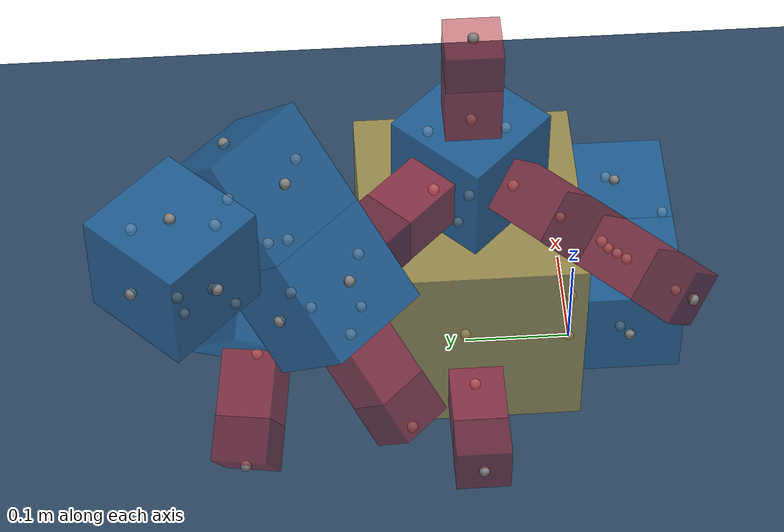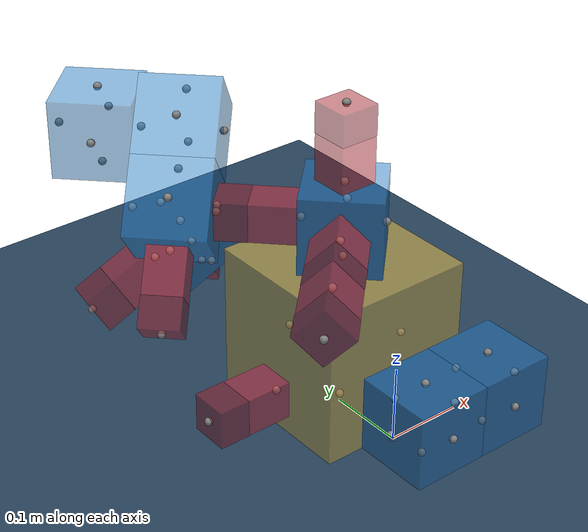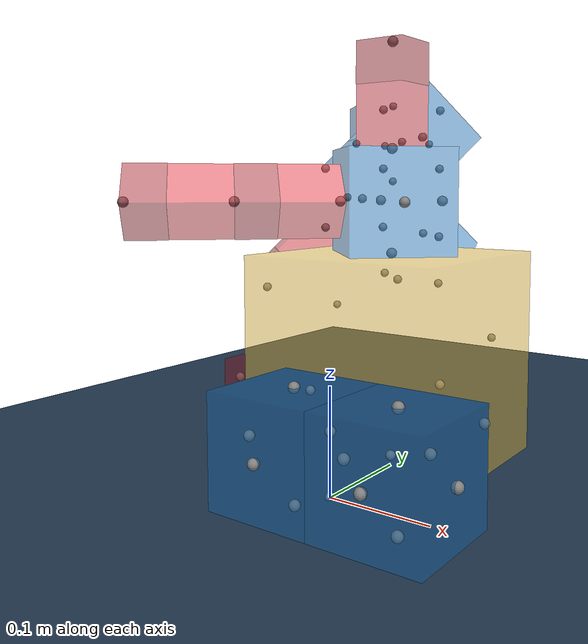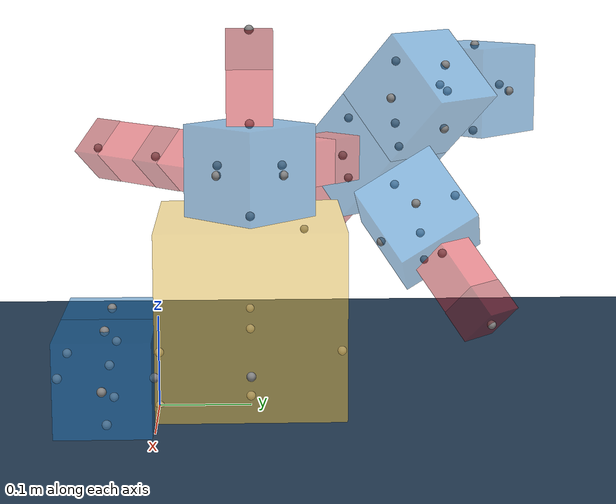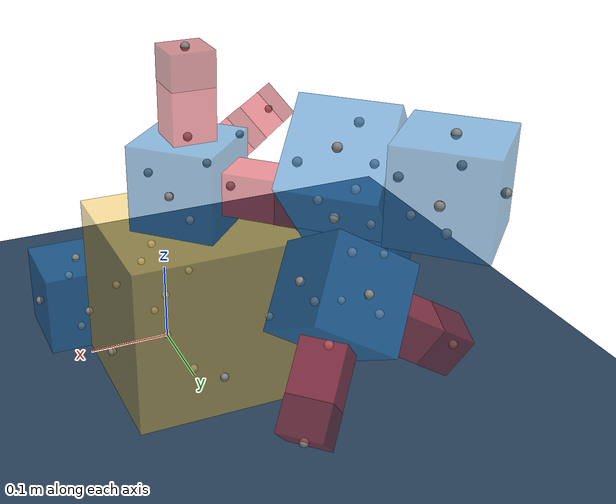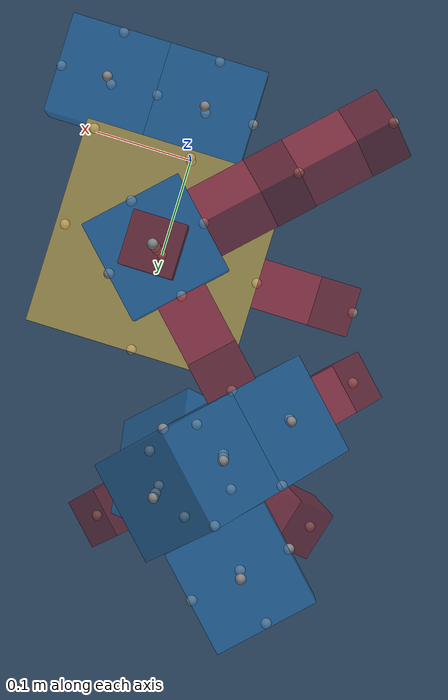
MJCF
<mujoco model="Simple Flat World">
  <compiler angle="radian"/>

  <option integrator="implicitfast"/>

  <visual>
    <global offwidth="1280" offheight="960"/>
  </visual>

  <default>
    <default class="robot1-main">
      <default class="robot1-0-25-3-main"/>
      <default class="robot1-0-27-4-main"/>
      <default class="robot1-0-13-1-main"/>
      <default class="robot1-27-6-2-main"/>
      <default class="robot1-27-22-0-main"/>
      <default class="robot1-27-8-4-main"/>
      <default class="robot1-13-26-5-main"/>
      <default class="robot1-6-1-0-main"/>
      <default class="robot1-8-19-0-main"/>
      <default class="robot1-19-18-3-main"/>
      <default class="robot1-19-12-4-main"/>
      <default class="robot1-19-17-2-main"/>
      <default class="robot1-18-2-5-main"/>
      <default class="robot1-12-21-0-main"/>
      <default class="robot1-12-24-3-main"/>
    </default>
  </default>

  <asset>
    <texture type="2d" colorspace="auto" name="floor" builtin="checker" rgb1="0.1 0.2 0.3" rgb2="0.2 0.3 0.4" width="600" height="600"/>
    <material name="floor" texture="floor" texuniform="true" texrepeat="3 3"/>
  </asset>

  <worldbody>
    <site pos="0 0 0"/>
    <camera name="ortho-cam" pos="-5 0 5" quat="0.653281 0.270598 -0.270598 -0.653281" orthographic="true" fovy="5"/>
    <light name="light" pos="0 0 1" dir="0 0 -1" type="directional" castshadow="false"/>
    <body name="floor">
      <geom name="floor" size="5 5 0.5" type="plane" material="floor"/>
    </body>
    <body name="robot1-world" pos="0 0 0.11">
      <joint type="free"/>
      <body name="robot1-core">
        <geom name="robot1-core" size="0.1 0.1 0.1" pos="0 0.1 0" type="box" mass="1" rgba="0.992157 0.792157 0.25098 0.5"/>
        <site name="robot1-core-front" pos="0 0.2 -0.05"/>
        <site name="robot1-core-back" pos="0 0 -0.05" quat="0 0 0 1"/>
        <site name="robot1-core-left" pos="-0.1 0.1 -0.05" quat="0.707107 0 0 0.707107"/>
        <site name="robot1-core-right" pos="0.1 0.1 -0.05" quat="-0.707107 0 0 0.707107"/>
        <site name="robot1-core-top" pos="0 0.1 0.1" quat="0.707107 0.707107 0 0"/>
        <site name="robot1-core-bottom" pos="0 0.1 -0.1" quat="0 0 -0.707107 0.707107"/>
        <body name="robot1-0-25-3-hinge" pos="-0.1 0.1 -0.05" quat="-0.5 -0.5 0.5 -0.5">
          <body name="robot1-0-25-3-stator" pos="0 0.03 0">
            <geom name="robot1-0-25-3-stator" size="0.02475 0.0297 0.02475" type="box" mass="0.02" rgba="0.87451 0.160784 0.207843 0.5"/>
          </body>
          <body name="robot1-0-25-3-rotor" pos="0 0.08 0">
            <joint name="robot1-0-25-3-servo" pos="0 -0.02 0" axis="0 0 1"/>
            <geom name="robot1-0-25-3-rotor" size="0.025 0.02 0.025" type="box" mass="0.04" rgba="0.627451 0.0941176 0.129412 0.5"/>
            <site name="robot1-0-25-3-hinge-front" pos="0 0.02 0"/>
          </body>
        </body>
        <body name="robot1-0-27-4-brick" pos="0 0.1 0.1" quat="-0.270759 -0.270759 0.653215 0.653215">
          <geom name="robot1-0-27-4-brick" size="0.05 0.05 0.05" pos="0 0.05 0" type="box" mass="0.055" rgba="0.109804 0.466667 0.764706 0.5"/>
          <site name="robot1-0-27-4-brick-front" pos="0 0.1 0"/>
          <site name="robot1-0-27-4-brick-left" pos="-0.05 0.05 0" quat="0.707107 0 0 0.707107"/>
          <site name="robot1-0-27-4-brick-right" pos="0.05 0.05 0" quat="-0.707107 0 0 0.707107"/>
          <site name="robot1-0-27-4-brick-top" pos="0 0.05 0.05" quat="0.707107 0.707107 0 0"/>
          <site name="robot1-0-27-4-brick-bottom" pos="0 0.05 -0.05" quat="0 0 -0.707107 0.707107"/>
          <body name="robot1-27-6-2-hinge" pos="0.05 0.05 0" quat="-0.653215 -0.270759 -0.270759 0.653215">
            <body name="robot1-27-6-2-stator" pos="0 0.03 0">
              <geom name="robot1-27-6-2-stator" size="0.02475 0.0297 0.02475" type="box" mass="0.02" rgba="0.87451 0.160784 0.207843 0.5"/>
            </body>
            <body name="robot1-27-6-2-rotor" pos="0 0.08 0">
              <joint name="robot1-27-6-2-servo" pos="0 -0.02 0" axis="0 0 1"/>
              <geom name="robot1-27-6-2-rotor" size="0.025 0.02 0.025" type="box" mass="0.04" rgba="0.627451 0.0941176 0.129412 0.5"/>
              <site name="robot1-27-6-2-hinge-front" pos="0 0.02 0"/>
              <body name="robot1-6-1-0-hinge" pos="0 0.02 0" quat="0.707107 0 0.707107 0">
                <body name="robot1-6-1-0-stator" pos="0 0.03 0">
                  <geom name="robot1-6-1-0-stator" size="0.02475 0.0297 0.02475" type="box" mass="0.02" rgba="0.87451 0.160784 0.207843 0.5"/>
                </body>
                <body name="robot1-6-1-0-rotor" pos="0 0.08 0">
                  <joint name="robot1-6-1-0-servo" pos="0 -0.02 0" axis="0 0 1"/>
                  <geom name="robot1-6-1-0-rotor" size="0.025 0.02 0.025" type="box" mass="0.04" rgba="0.627451 0.0941176 0.129412 0.5"/>
                  <site name="robot1-6-1-0-hinge-front" pos="0 0.02 0"/>
                </body>
              </body>
            </body>
          </body>
          <body name="robot1-27-22-0-hinge" pos="0 0.1 0" quat="-0.382911 0 0.923785 0">
            <body name="robot1-27-22-0-stator" pos="0 0.03 0">
              <geom name="robot1-27-22-0-stator" size="0.02475 0.0297 0.02475" type="box" mass="0.02" rgba="0.87451 0.160784 0.207843 0.5"/>
            </body>
            <body name="robot1-27-22-0-rotor" pos="0 0.08 0">
              <joint name="robot1-27-22-0-servo" pos="0 -0.02 0" axis="0 0 1"/>
              <geom name="robot1-27-22-0-rotor" size="0.025 0.02 0.025" type="box" mass="0.04" rgba="0.627451 0.0941176 0.129412 0.5"/>
              <site name="robot1-27-22-0-hinge-front" pos="0 0.02 0"/>
            </body>
          </body>
          <body name="robot1-27-8-4-hinge" pos="0 0.05 0.05" quat="0.5 0.5 0.5 0.5">
            <body name="robot1-27-8-4-stator" pos="0 0.03 0">
              <geom name="robot1-27-8-4-stator" size="0.02475 0.0297 0.02475" type="box" mass="0.02" rgba="0.87451 0.160784 0.207843 0.5"/>
            </body>
            <body name="robot1-27-8-4-rotor" pos="0 0.08 0">
              <joint name="robot1-27-8-4-servo" pos="0 -0.02 0" axis="0 0 1"/>
              <geom name="robot1-27-8-4-rotor" size="0.025 0.02 0.025" type="box" mass="0.04" rgba="0.627451 0.0941176 0.129412 0.5"/>
              <site name="robot1-27-8-4-hinge-front" pos="0 0.02 0"/>
              <body name="robot1-8-19-0-brick" pos="0 0.02 0" quat="-0.382911 0 0.923785 0">
                <geom name="robot1-8-19-0-brick" size="0.05 0.05 0.05" pos="0 0.05 0" type="box" mass="0.055" rgba="0.109804 0.466667 0.764706 0.5"/>
                <site name="robot1-8-19-0-brick-front" pos="0 0.1 0"/>
                <site name="robot1-8-19-0-brick-left" pos="-0.05 0.05 0" quat="0.707107 0 0 0.707107"/>
                <site name="robot1-8-19-0-brick-right" pos="0.05 0.05 0" quat="-0.707107 0 0 0.707107"/>
                <site name="robot1-8-19-0-brick-top" pos="0 0.05 0.05" quat="0.707107 0.707107 0 0"/>
                <site name="robot1-8-19-0-brick-bottom" pos="0 0.05 -0.05" quat="0 0 -0.707107 0.707107"/>
                <body name="robot1-19-18-3-brick" pos="-0.05 0.05 0" quat="-0.5 -0.5 0.5 -0.5">
                  <geom name="robot1-19-18-3-brick" size="0.05 0.05 0.05" pos="0 0.05 0" type="box" mass="0.055" rgba="0.109804 0.466667 0.764706 0.5"/>
                  <site name="robot1-19-18-3-brick-front" pos="0 0.1 0"/>
                  <site name="robot1-19-18-3-brick-left" pos="-0.05 0.05 0" quat="0.707107 0 0 0.707107"/>
                  <site name="robot1-19-18-3-brick-right" pos="0.05 0.05 0" quat="-0.707107 0 0 0.707107"/>
                  <site name="robot1-19-18-3-brick-top" pos="0 0.05 0.05" quat="0.707107 0.707107 0 0"/>
                  <site name="robot1-19-18-3-brick-bottom" pos="0 0.05 -0.05" quat="0 0 -0.707107 0.707107"/>
                  <body name="robot1-18-2-5-brick" pos="0 0.05 -0.05" quat="0.270759 -0.270759 0.653215 -0.653215">
                    <geom name="robot1-18-2-5-brick" size="0.05 0.05 0.05" pos="0 0.05 0" type="box" mass="0.055" rgba="0.109804 0.466667 0.764706 0.5"/>
                    <site name="robot1-18-2-5-brick-front" pos="0 0.1 0"/>
                    <site name="robot1-18-2-5-brick-left" pos="-0.05 0.05 0" quat="0.707107 0 0 0.707107"/>
                    <site name="robot1-18-2-5-brick-right" pos="0.05 0.05 0" quat="-0.707107 0 0 0.707107"/>
                    <site name="robot1-18-2-5-brick-top" pos="0 0.05 0.05" quat="0.707107 0.707107 0 0"/>
                    <site name="robot1-18-2-5-brick-bottom" pos="0 0.05 -0.05" quat="0 0 -0.707107 0.707107"/>
                  </body>
                </body>
                <body name="robot1-19-12-4-brick" pos="0 0.05 0.05" quat="-0.270759 -0.270759 0.653215 0.653215">
                  <geom name="robot1-19-12-4-brick" size="0.05 0.05 0.05" pos="0 0.05 0" type="box" mass="0.055" rgba="0.109804 0.466667 0.764706 0.5"/>
                  <site name="robot1-19-12-4-brick-front" pos="0 0.1 0"/>
                  <site name="robot1-19-12-4-brick-left" pos="-0.05 0.05 0" quat="0.707107 0 0 0.707107"/>
                  <site name="robot1-19-12-4-brick-right" pos="0.05 0.05 0" quat="-0.707107 0 0 0.707107"/>
                  <site name="robot1-19-12-4-brick-top" pos="0 0.05 0.05" quat="0.707107 0.707107 0 0"/>
                  <site name="robot1-19-12-4-brick-bottom" pos="0 0.05 -0.05" quat="0 0 -0.707107 0.707107"/>
                  <body name="robot1-12-21-0-hinge" pos="0 0.1 0" quat="-0.923785 0 0.382911 0">
                    <body name="robot1-12-21-0-stator" pos="0 0.03 0">
                      <geom name="robot1-12-21-0-stator" size="0.02475 0.0297 0.02475" type="box" mass="0.02" rgba="0.87451 0.160784 0.207843 0.5"/>
                    </body>
                    <body name="robot1-12-21-0-rotor" pos="0 0.08 0">
                      <joint name="robot1-12-21-0-servo" pos="0 -0.02 0" axis="0 0 1"/>
                      <geom name="robot1-12-21-0-rotor" size="0.025 0.02 0.025" type="box" mass="0.04" rgba="0.627451 0.0941176 0.129412 0.5"/>
                      <site name="robot1-12-21-0-hinge-front" pos="0 0.02 0"/>
                    </body>
                  </body>
                  <body name="robot1-12-24-3-hinge" pos="-0.05 0.05 0" quat="0.653215 -0.270759 0.270759 0.653215">
                    <body name="robot1-12-24-3-stator" pos="0 0.03 0">
                      <geom name="robot1-12-24-3-stator" size="0.02475 0.0297 0.02475" type="box" mass="0.02" rgba="0.87451 0.160784 0.207843 0.5"/>
                    </body>
                    <body name="robot1-12-24-3-rotor" pos="0 0.08 0">
                      <joint name="robot1-12-24-3-servo" pos="0 -0.02 0" axis="0 0 1"/>
                      <geom name="robot1-12-24-3-rotor" size="0.025 0.02 0.025" type="box" mass="0.04" rgba="0.627451 0.0941176 0.129412 0.5"/>
                      <site name="robot1-12-24-3-hinge-front" pos="0 0.02 0"/>
                    </body>
                  </body>
                </body>
                <body name="robot1-19-17-2-hinge" pos="0.05 0.05 0" quat="0.5 -0.5 -0.5 -0.5">
                  <body name="robot1-19-17-2-stator" pos="0 0.03 0">
                    <geom name="robot1-19-17-2-stator" size="0.02475 0.0297 0.02475" type="box" mass="0.02" rgba="0.87451 0.160784 0.207843 0.5"/>
                  </body>
                  <body name="robot1-19-17-2-rotor" pos="0 0.08 0">
                    <joint name="robot1-19-17-2-servo" pos="0 -0.02 0" axis="0 0 1"/>
                    <geom name="robot1-19-17-2-rotor" size="0.025 0.02 0.025" type="box" mass="0.04" rgba="0.627451 0.0941176 0.129412 0.5"/>
                    <site name="robot1-19-17-2-hinge-front" pos="0 0.02 0"/>
                  </body>
                </body>
              </body>
            </body>
          </body>
        </body>
        <body name="robot1-0-13-1-brick" pos="0 0 -0.05" quat="0 -0.707107 0 0.707107">
          <geom name="robot1-0-13-1-brick" size="0.05 0.05 0.05" pos="0 0.05 0" type="box" mass="0.055" rgba="0.109804 0.466667 0.764706 0.5"/>
          <site name="robot1-0-13-1-brick-front" pos="0 0.1 0"/>
          <site name="robot1-0-13-1-brick-left" pos="-0.05 0.05 0" quat="0.707107 0 0 0.707107"/>
          <site name="robot1-0-13-1-brick-right" pos="0.05 0.05 0" quat="-0.707107 0 0 0.707107"/>
          <site name="robot1-0-13-1-brick-top" pos="0 0.05 0.05" quat="0.707107 0.707107 0 0"/>
          <site name="robot1-0-13-1-brick-bottom" pos="0 0.05 -0.05" quat="0 0 -0.707107 0.707107"/>
          <body name="robot1-13-26-5-brick" pos="0 0.05 -0.05" quat="0.5 -0.5 -0.5 0.5">
            <geom name="robot1-13-26-5-brick" size="0.05 0.05 0.05" pos="0 0.05 0" type="box" mass="0.055" rgba="0.109804 0.466667 0.764706 0.5"/>
            <site name="robot1-13-26-5-brick-front" pos="0 0.1 0"/>
            <site name="robot1-13-26-5-brick-left" pos="-0.05 0.05 0" quat="0.707107 0 0 0.707107"/>
            <site name="robot1-13-26-5-brick-right" pos="0.05 0.05 0" quat="-0.707107 0 0 0.707107"/>
            <site name="robot1-13-26-5-brick-top" pos="0 0.05 0.05" quat="0.707107 0.707107 0 0"/>
            <site name="robot1-13-26-5-brick-bottom" pos="0 0.05 -0.05" quat="0 0 -0.707107 0.707107"/>
          </body>
        </body>
      </body>
    </body>
  </worldbody>

  <contact>
    <exclude body1="robot1-0-25-3-stator" body2="robot1-0-25-3-rotor"/>
    <exclude body1="robot1-27-6-2-stator" body2="robot1-27-6-2-rotor"/>
    <exclude body1="robot1-6-1-0-stator" body2="robot1-6-1-0-rotor"/>
    <exclude body1="robot1-27-22-0-stator" body2="robot1-27-22-0-rotor"/>
    <exclude body1="robot1-27-8-4-stator" body2="robot1-27-8-4-rotor"/>
    <exclude body1="robot1-12-21-0-stator" body2="robot1-12-21-0-rotor"/>
    <exclude body1="robot1-12-24-3-stator" body2="robot1-12-24-3-rotor"/>
    <exclude body1="robot1-19-17-2-stator" body2="robot1-19-17-2-rotor"/>
  </contact>

  <actuator>
    <general name="robot1-0-25-3-servo" joint="robot1-0-25-3-servo" ctrlrange="-1.5708 1.5708" dynprm="0 0 0 0 0 0 0 0 0 0" biastype="affine" biasprm="0 -1 -1"/>
    <general name="robot1-27-6-2-servo" joint="robot1-27-6-2-servo" ctrlrange="-1.5708 1.5708" dynprm="0 0 0 0 0 0 0 0 0 0" biastype="affine" biasprm="0 -1 -1"/>
    <general name="robot1-27-22-0-servo" joint="robot1-27-22-0-servo" ctrlrange="-1.5708 1.5708" dynprm="0 0 0 0 0 0 0 0 0 0" biastype="affine" biasprm="0 -1 -1"/>
    <general name="robot1-27-8-4-servo" joint="robot1-27-8-4-servo" ctrlrange="-1.5708 1.5708" dynprm="0 0 0 0 0 0 0 0 0 0" biastype="affine" biasprm="0 -1 -1"/>
    <general name="robot1-6-1-0-servo" joint="robot1-6-1-0-servo" ctrlrange="-1.5708 1.5708" dynprm="0 0 0 0 0 0 0 0 0 0" biastype="affine" biasprm="0 -1 -1"/>
    <general name="robot1-19-17-2-servo" joint="robot1-19-17-2-servo" ctrlrange="-1.5708 1.5708" dynprm="0 0 0 0 0 0 0 0 0 0" biastype="affine" biasprm="0 -1 -1"/>
    <general name="robot1-12-21-0-servo" joint="robot1-12-21-0-servo" ctrlrange="-1.5708 1.5708" dynprm="0 0 0 0 0 0 0 0 0 0" biastype="affine" biasprm="0 -1 -1"/>
    <general name="robot1-12-24-3-servo" joint="robot1-12-24-3-servo" ctrlrange="-1.5708 1.5708" dynprm="0 0 0 0 0 0 0 0 0 0" biastype="affine" biasprm="0 -1 -1"/>
  </actuator>
</mujoco>
